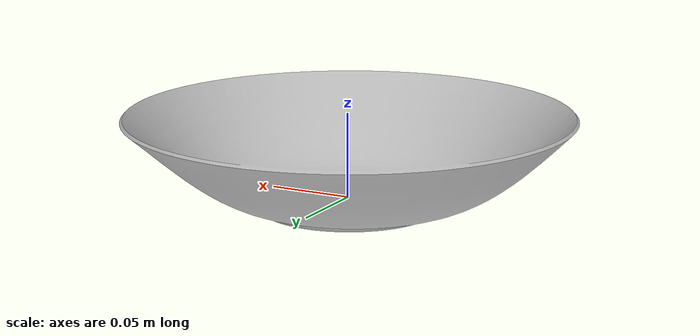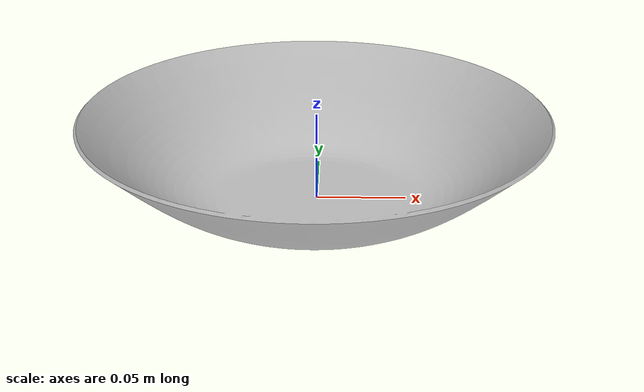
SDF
<?xml version='1.0'?>
<sdf version='1.7'>
    <model name="bowl">
        <pose>0 0 0 0 0 0</pose>
        <static>false</static>
        <link name="link">
        <inertial>
            <mass>1.0</mass>
            <inertia> <!-- inertias are tricky to compute -->
            <!-- http://gazebosim.org/tutorials?tut=inertia&cat=build_robot -->
            <ixx>0.0015897</ixx>       <!-- for a box: ixx = 0.083 * mass * (y*y + z*z) -->
            <ixy>0.0</ixy>         <!-- for a box: ixy = 0 -->
            <ixz>0.0</ixz>         <!-- for a box: ixz = 0 -->
            <iyy>0.0016164</iyy>       <!-- for a box: iyy = 0.083 * mass * (x*x + z*z) -->
            <iyz>0.0</iyz>         <!-- for a box: iyz = 0 -->
            <izz>0.0027627</izz>       <!-- for a box: izz = 0.083 * mass * (x*x + y*y) -->
            </inertia>
        </inertial>
        <collision name="collision">
            <geometry>
            <mesh>
                <uri>model://bowl/meshes/bowlCollision.dae</uri>
            </mesh>
            </geometry>
        </collision>
        <visual name="visual">
            <geometry>
            <mesh>
                <uri>model://bowl/meshes/bowl.dae</uri>
            </mesh>
            </geometry>
        </visual>
        </link>
    </model>
</sdf>
